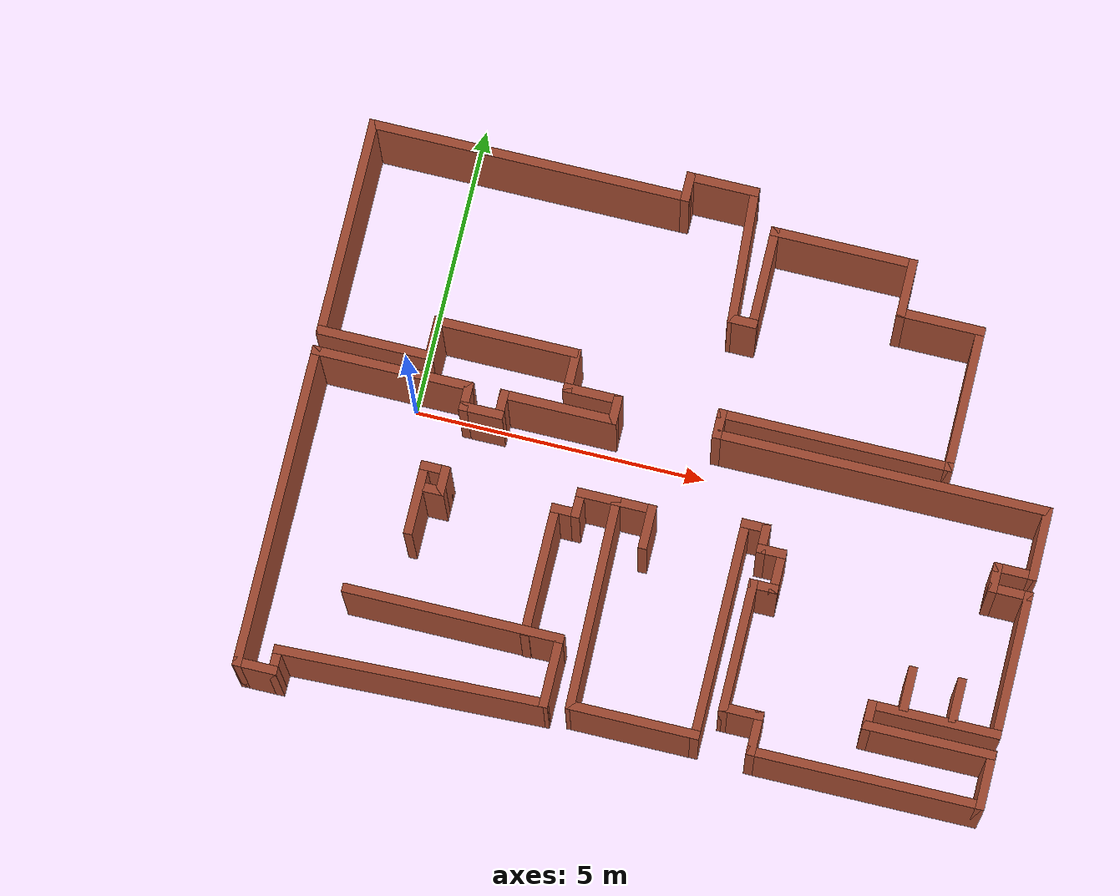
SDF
<?xml version='1.0'?>
<sdf version='1.6'>
  <model name='map_132'>
    <pose frame=''>4.5151 -0.313114 0 0 -0 0</pose>
    <link name='Wall_0'>
      <collision name='Wall_0_Collision'>
        <geometry>
          <box>
            <size>1.25 0.15 2.5</size>
          </box>
        </geometry>
        <pose frame=''>0 0 1.25 0 -0 0</pose>
      </collision>
      <visual name='Wall_0_Visual'>
        <pose frame=''>0 0 1.25 0 -0 0</pose>
        <geometry>
          <box>
            <size>1.25 0.15 2.5</size>
          </box>
        </geometry>
        <material>
          <script>
            <uri>file://media/materials/scripts/gazebo.material</uri>
            <name>Gazebo/Bricks</name>
          </script>
          <ambient>1 1 1 1</ambient>
        </material>
        <meta>
          <layer>0</layer>
        </meta>
      </visual>
      <pose frame=''>-0.29008 4.82284 0 0 -0 3.14159</pose>
    </link>
    <link name='Wall_1'>
      <collision name='Wall_1_Collision'>
        <geometry>
          <box>
            <size>0.5 0.15 2.5</size>
          </box>
        </geometry>
        <pose frame=''>0 0 1.25 0 -0 0</pose>
      </collision>
      <visual name='Wall_1_Visual'>
        <pose frame=''>0 0 1.25 0 -0 0</pose>
        <geometry>
          <box>
            <size>0.5 0.15 2.5</size>
          </box>
        </geometry>
        <material>
          <script>
            <uri>file://media/materials/scripts/gazebo.material</uri>
            <name>Gazebo/Bricks</name>
          </script>
          <ambient>1 1 1 1</ambient>
        </material>
        <meta>
          <layer>0</layer>
        </meta>
      </visual>
      <pose frame=''>-0.84008 4.64783 0 0 -0 -1.5708</pose>
    </link>
    <link name='Wall_10'>
      <collision name='Wall_10_Collision'>
        <geometry>
          <box>
            <size>2 0.15 2.5</size>
          </box>
        </geometry>
        <pose frame=''>0 0 1.25 0 -0 0</pose>
      </collision>
      <visual name='Wall_10_Visual'>
        <pose frame=''>0 0 1.25 0 -0 0</pose>
        <geometry>
          <box>
            <size>2 0.15 2.5</size>
          </box>
        </geometry>
        <material>
          <script>
            <uri>file://media/materials/scripts/gazebo.material</uri>
            <name>Gazebo/Bricks</name>
          </script>
          <ambient>1 1 1 1</ambient>
        </material>
        <meta>
          <layer>0</layer>
        </meta>
      </visual>
      <pose frame=''>-2.06508 0.522835 0 0 -0 3.14159</pose>
    </link>
    <link name='Wall_13'>
      <collision name='Wall_13_Collision'>
        <geometry>
          <box>
            <size>0.5 0.15 2.5</size>
          </box>
        </geometry>
        <pose frame=''>0 0 1.25 0 -0 0</pose>
      </collision>
      <visual name='Wall_13_Visual'>
        <pose frame=''>0 0 1.25 0 -0 0</pose>
        <geometry>
          <box>
            <size>0.5 0.15 2.5</size>
          </box>
        </geometry>
        <material>
          <script>
            <uri>file://media/materials/scripts/gazebo.material</uri>
            <name>Gazebo/Bricks</name>
          </script>
          <ambient>1 1 1 1</ambient>
        </material>
        <meta>
          <layer>0</layer>
        </meta>
      </visual>
      <pose frame=''>-2.99008 0.347835 0 0 -0 -1.5708</pose>
    </link>
    <link name='Wall_14'>
      <collision name='Wall_14_Collision'>
        <geometry>
          <box>
            <size>0.75 0.15 2.5</size>
          </box>
        </geometry>
        <pose frame=''>0 0 1.25 0 -0 0</pose>
      </collision>
      <visual name='Wall_14_Visual'>
        <pose frame=''>0 0 1.25 0 -0 0</pose>
        <geometry>
          <box>
            <size>0.75 0.15 2.5</size>
          </box>
        </geometry>
        <material>
          <script>
            <uri>file://media/materials/scripts/gazebo.material</uri>
            <name>Gazebo/Bricks</name>
          </script>
          <ambient>1 1 1 1</ambient>
        </material>
        <meta>
          <layer>0</layer>
        </meta>
      </visual>
      <pose frame=''>-3.29008 0.172835 0 0 -0 3.14159</pose>
    </link>
    <link name='Wall_15'>
      <collision name='Wall_15_Collision'>
        <geometry>
          <box>
            <size>0.5 0.15 2.5</size>
          </box>
        </geometry>
        <pose frame=''>0 0 1.25 0 -0 0</pose>
      </collision>
      <visual name='Wall_15_Visual'>
        <pose frame=''>0 0 1.25 0 -0 0</pose>
        <geometry>
          <box>
            <size>0.5 0.15 2.5</size>
          </box>
        </geometry>
        <material>
          <script>
            <uri>file://media/materials/scripts/gazebo.material</uri>
            <name>Gazebo/Bricks</name>
          </script>
          <ambient>1 1 1 1</ambient>
        </material>
        <meta>
          <layer>0</layer>
        </meta>
      </visual>
      <pose frame=''>-3.59008 0.347835 0 0 -0 1.5708</pose>
    </link>
    <link name='Wall_16'>
      <collision name='Wall_16_Collision'>
        <geometry>
          <box>
            <size>2.75 0.15 2.5</size>
          </box>
        </geometry>
        <pose frame=''>0 0 1.25 0 -0 0</pose>
      </collision>
      <visual name='Wall_16_Visual'>
        <pose frame=''>0 0 1.25 0 -0 0</pose>
        <geometry>
          <box>
            <size>2.75 0.15 2.5</size>
          </box>
        </geometry>
        <material>
          <script>
            <uri>file://media/materials/scripts/gazebo.material</uri>
            <name>Gazebo/Bricks</name>
          </script>
          <ambient>1 1 1 1</ambient>
        </material>
        <meta>
          <layer>0</layer>
        </meta>
      </visual>
      <pose frame=''>-4.89008 0.522835 0 0 -0 3.14159</pose>
    </link>
    <link name='Wall_2'>
      <collision name='Wall_2_Collision'>
        <geometry>
          <box>
            <size>5.5 0.15 2.5</size>
          </box>
        </geometry>
        <pose frame=''>0 0 1.25 0 -0 0</pose>
      </collision>
      <visual name='Wall_2_Visual'>
        <pose frame=''>0 0 1.25 0 -0 0</pose>
        <geometry>
          <box>
            <size>5.5 0.15 2.5</size>
          </box>
        </geometry>
        <material>
          <script>
            <uri>file://media/materials/scripts/gazebo.material</uri>
            <name>Gazebo/Bricks</name>
          </script>
          <ambient>1 1 1 1</ambient>
        </material>
        <meta>
          <layer>0</layer>
        </meta>
      </visual>
      <pose frame=''>-3.51508 4.47284 0 0 -0 3.14159</pose>
    </link>
    <link name='Wall_23'>
      <collision name='Wall_23_Collision'>
        <geometry>
          <box>
            <size>1.25 0.15 2.5</size>
          </box>
        </geometry>
        <pose frame=''>0 0 1.25 0 -0 0</pose>
      </collision>
      <visual name='Wall_23_Visual'>
        <pose frame=''>0 0 1.25 0 -0 0</pose>
        <geometry>
          <box>
            <size>1.25 0.15 2.5</size>
          </box>
        </geometry>
        <material>
          <script>
            <uri>file://media/materials/scripts/gazebo.material</uri>
            <name>Gazebo/Bricks</name>
          </script>
          <ambient>1 1 1 1</ambient>
        </material>
        <meta>
          <layer>0</layer>
        </meta>
      </visual>
      <pose frame=''>-1.14008 -3.77716 0 0 -0 1.5708</pose>
    </link>
    <link name='Wall_24'>
      <collision name='Wall_24_Collision'>
        <geometry>
          <box>
            <size>3.75 0.15 2.5</size>
          </box>
        </geometry>
        <pose frame=''>0 0 1.25 0 -0 0</pose>
      </collision>
      <visual name='Wall_24_Visual'>
        <pose frame=''>0 0 1.25 0 -0 0</pose>
        <geometry>
          <box>
            <size>3.75 0.15 2.5</size>
          </box>
        </geometry>
        <material>
          <script>
            <uri>file://media/materials/scripts/gazebo.material</uri>
            <name>Gazebo/Bricks</name>
          </script>
          <ambient>1 1 1 1</ambient>
        </material>
        <meta>
          <layer>0</layer>
        </meta>
      </visual>
      <pose frame=''>-2.94008 -3.22716 0 0 -0 3.14159</pose>
    </link>
    <link name='Wall_3'>
      <collision name='Wall_3_Collision'>
        <geometry>
          <box>
            <size>3.75 0.15 2.5</size>
          </box>
        </geometry>
        <pose frame=''>0 0 1.25 0 -0 0</pose>
      </collision>
      <visual name='Wall_3_Visual'>
        <pose frame=''>0 0 1.25 0 -0 0</pose>
        <geometry>
          <box>
            <size>3.75 0.15 2.5</size>
          </box>
        </geometry>
        <material>
          <script>
            <uri>file://media/materials/scripts/gazebo.material</uri>
            <name>Gazebo/Bricks</name>
          </script>
          <ambient>1 1 1 1</ambient>
        </material>
        <meta>
          <layer>0</layer>
        </meta>
      </visual>
      <pose frame=''>-6.19008 2.67284 0 0 -0 -1.5708</pose>
    </link>
    <link name='Wall_31'>
      <collision name='Wall_31_Collision'>
        <geometry>
          <box>
            <size>2.25 0.15 2.5</size>
          </box>
        </geometry>
        <pose frame=''>0 0 1.25 0 -0 0</pose>
      </collision>
      <visual name='Wall_31_Visual'>
        <pose frame=''>0 0 1.25 0 -0 0</pose>
        <geometry>
          <box>
            <size>2.25 0.15 2.5</size>
          </box>
        </geometry>
        <material>
          <script>
            <uri>file://media/materials/scripts/gazebo.material</uri>
            <name>Gazebo/Bricks</name>
          </script>
          <ambient>1 1 1 1</ambient>
        </material>
        <meta>
          <layer>0</layer>
        </meta>
      </visual>
      <pose frame=''>0.34008 -4.26096 0 0 -0 0</pose>
    </link>
    <link name='Wall_32'>
      <collision name='Wall_32_Collision'>
        <geometry>
          <box>
            <size>3.75 0.15 2.5</size>
          </box>
        </geometry>
        <pose frame=''>0 0 1.25 0 -0 0</pose>
      </collision>
      <visual name='Wall_32_Visual'>
        <pose frame=''>0 0 1.25 0 -0 0</pose>
        <geometry>
          <box>
            <size>3.75 0.15 2.5</size>
          </box>
        </geometry>
        <material>
          <script>
            <uri>file://media/materials/scripts/gazebo.material</uri>
            <name>Gazebo/Bricks</name>
          </script>
          <ambient>1 1 1 1</ambient>
        </material>
        <meta>
          <layer>0</layer>
        </meta>
      </visual>
      <pose frame=''>1.39008 -2.46096 0 0 -0 1.5708</pose>
    </link>
    <link name='Wall_33'>
      <collision name='Wall_33_Collision'>
        <geometry>
          <box>
            <size>0.5 0.15 2.5</size>
          </box>
        </geometry>
        <pose frame=''>0 0 1.25 0 -0 0</pose>
      </collision>
      <visual name='Wall_33_Visual'>
        <pose frame=''>0 0 1.25 0 -0 0</pose>
        <geometry>
          <box>
            <size>0.5 0.15 2.5</size>
          </box>
        </geometry>
        <material>
          <script>
            <uri>file://media/materials/scripts/gazebo.material</uri>
            <name>Gazebo/Bricks</name>
          </script>
          <ambient>1 1 1 1</ambient>
        </material>
        <meta>
          <layer>0</layer>
        </meta>
      </visual>
      <pose frame=''>1.56508 -0.660963 0 0 -0 0</pose>
    </link>
    <link name='Wall_34'>
      <collision name='Wall_34_Collision'>
        <geometry>
          <box>
            <size>0.5 0.15 2.5</size>
          </box>
        </geometry>
        <pose frame=''>0 0 1.25 0 -0 0</pose>
      </collision>
      <visual name='Wall_34_Visual'>
        <pose frame=''>0 0 1.25 0 -0 0</pose>
        <geometry>
          <box>
            <size>0.5 0.15 2.5</size>
          </box>
        </geometry>
        <material>
          <script>
            <uri>file://media/materials/scripts/gazebo.material</uri>
            <name>Gazebo/Bricks</name>
          </script>
          <ambient>1 1 1 1</ambient>
        </material>
        <meta>
          <layer>0</layer>
        </meta>
      </visual>
      <pose frame=''>1.74008 -0.835963 0 0 -0 -1.5708</pose>
    </link>
    <link name='Wall_35'>
      <collision name='Wall_35_Collision'>
        <geometry>
          <box>
            <size>0.5 0.15 2.5</size>
          </box>
        </geometry>
        <pose frame=''>0 0 1.25 0 -0 0</pose>
      </collision>
      <visual name='Wall_35_Visual'>
        <pose frame=''>0 0 1.25 0 -0 0</pose>
        <geometry>
          <box>
            <size>0.5 0.15 2.5</size>
          </box>
        </geometry>
        <material>
          <script>
            <uri>file://media/materials/scripts/gazebo.material</uri>
            <name>Gazebo/Bricks</name>
          </script>
          <ambient>1 1 1 1</ambient>
        </material>
        <meta>
          <layer>0</layer>
        </meta>
      </visual>
      <pose frame=''>1.91508 -1.01096 0 0 -0 0</pose>
    </link>
    <link name='Wall_36'>
      <collision name='Wall_36_Collision'>
        <geometry>
          <box>
            <size>0.75 0.15 2.5</size>
          </box>
        </geometry>
        <pose frame=''>0 0 1.25 0 -0 0</pose>
      </collision>
      <visual name='Wall_36_Visual'>
        <pose frame=''>0 0 1.25 0 -0 0</pose>
        <geometry>
          <box>
            <size>0.75 0.15 2.5</size>
          </box>
        </geometry>
        <material>
          <script>
            <uri>file://media/materials/scripts/gazebo.material</uri>
            <name>Gazebo/Bricks</name>
          </script>
          <ambient>1 1 1 1</ambient>
        </material>
        <meta>
          <layer>0</layer>
        </meta>
      </visual>
      <pose frame=''>2.09008 -1.31096 0 0 -0 -1.5708</pose>
    </link>
    <link name='Wall_37'>
      <collision name='Wall_37_Collision'>
        <geometry>
          <box>
            <size>0.5 0.15 2.5</size>
          </box>
        </geometry>
        <pose frame=''>0 0 1.25 0 -0 0</pose>
      </collision>
      <visual name='Wall_37_Visual'>
        <pose frame=''>0 0 1.25 0 -0 0</pose>
        <geometry>
          <box>
            <size>0.5 0.15 2.5</size>
          </box>
        </geometry>
        <material>
          <script>
            <uri>file://media/materials/scripts/gazebo.material</uri>
            <name>Gazebo/Bricks</name>
          </script>
          <ambient>1 1 1 1</ambient>
        </material>
        <meta>
          <layer>0</layer>
        </meta>
      </visual>
      <pose frame=''>1.91508 -1.61096 0 0 -0 3.14159</pose>
    </link>
    <link name='Wall_38'>
      <collision name='Wall_38_Collision'>
        <geometry>
          <box>
            <size>2.25 0.15 2.5</size>
          </box>
        </geometry>
        <pose frame=''>0 0 1.25 0 -0 0</pose>
      </collision>
      <visual name='Wall_38_Visual'>
        <pose frame=''>0 0 1.25 0 -0 0</pose>
        <geometry>
          <box>
            <size>2.25 0.15 2.5</size>
          </box>
        </geometry>
        <material>
          <script>
            <uri>file://media/materials/scripts/gazebo.material</uri>
            <name>Gazebo/Bricks</name>
          </script>
          <ambient>1 1 1 1</ambient>
        </material>
        <meta>
          <layer>0</layer>
        </meta>
      </visual>
      <pose frame=''>1.74008 -2.66096 0 0 -0 -1.5708</pose>
    </link>
    <link name='Wall_39'>
      <collision name='Wall_39_Collision'>
        <geometry>
          <box>
            <size>0.75 0.15 2.5</size>
          </box>
        </geometry>
        <pose frame=''>0 0 1.25 0 -0 0</pose>
      </collision>
      <visual name='Wall_39_Visual'>
        <pose frame=''>0 0 1.25 0 -0 0</pose>
        <geometry>
          <box>
            <size>0.75 0.15 2.5</size>
          </box>
        </geometry>
        <material>
          <script>
            <uri>file://media/materials/scripts/gazebo.material</uri>
            <name>Gazebo/Bricks</name>
          </script>
          <ambient>1 1 1 1</ambient>
        </material>
        <meta>
          <layer>0</layer>
        </meta>
      </visual>
      <pose frame=''>2.04008 -3.71096 0 0 -0 0</pose>
    </link>
    <link name='Wall_4'>
      <collision name='Wall_4_Collision'>
        <geometry>
          <box>
            <size>2 0.15 2.5</size>
          </box>
        </geometry>
        <pose frame=''>0 0 1.25 0 -0 0</pose>
      </collision>
      <visual name='Wall_4_Visual'>
        <pose frame=''>0 0 1.25 0 -0 0</pose>
        <geometry>
          <box>
            <size>2 0.15 2.5</size>
          </box>
        </geometry>
        <material>
          <script>
            <uri>file://media/materials/scripts/gazebo.material</uri>
            <name>Gazebo/Bricks</name>
          </script>
          <ambient>1 1 1 1</ambient>
        </material>
        <meta>
          <layer>0</layer>
        </meta>
      </visual>
      <pose frame=''>-5.26508 0.872835 0 0 -0 0</pose>
    </link>
    <link name='Wall_40'>
      <collision name='Wall_40_Collision'>
        <geometry>
          <box>
            <size>0.75 0.15 2.5</size>
          </box>
        </geometry>
        <pose frame=''>0 0 1.25 0 -0 0</pose>
      </collision>
      <visual name='Wall_40_Visual'>
        <pose frame=''>0 0 1.25 0 -0 0</pose>
        <geometry>
          <box>
            <size>0.75 0.15 2.5</size>
          </box>
        </geometry>
        <material>
          <script>
            <uri>file://media/materials/scripts/gazebo.material</uri>
            <name>Gazebo/Bricks</name>
          </script>
          <ambient>1 1 1 1</ambient>
        </material>
        <meta>
          <layer>0</layer>
        </meta>
      </visual>
      <pose frame=''>2.34008 -4.01096 0 0 -0 -1.5708</pose>
    </link>
    <link name='Wall_41'>
      <collision name='Wall_41_Collision'>
        <geometry>
          <box>
            <size>4 0.15 2.5</size>
          </box>
        </geometry>
        <pose frame=''>0 0 1.25 0 -0 0</pose>
      </collision>
      <visual name='Wall_41_Visual'>
        <pose frame=''>0 0 1.25 0 -0 0</pose>
        <geometry>
          <box>
            <size>4 0.15 2.5</size>
          </box>
        </geometry>
        <material>
          <script>
            <uri>file://media/materials/scripts/gazebo.material</uri>
            <name>Gazebo/Bricks</name>
          </script>
          <ambient>1 1 1 1</ambient>
        </material>
        <meta>
          <layer>0</layer>
        </meta>
      </visual>
      <pose frame=''>4.26508 -4.31096 0 0 -0 0</pose>
    </link>
    <link name='Wall_42'>
      <collision name='Wall_42_Collision'>
        <geometry>
          <box>
            <size>1 0.15 2.5</size>
          </box>
        </geometry>
        <pose frame=''>0 0 1.25 0 -0 0</pose>
      </collision>
      <visual name='Wall_42_Visual'>
        <pose frame=''>0 0 1.25 0 -0 0</pose>
        <geometry>
          <box>
            <size>1 0.15 2.5</size>
          </box>
        </geometry>
        <material>
          <script>
            <uri>file://media/materials/scripts/gazebo.material</uri>
            <name>Gazebo/Bricks</name>
          </script>
          <ambient>1 1 1 1</ambient>
        </material>
        <meta>
          <layer>0</layer>
        </meta>
      </visual>
      <pose frame=''>6.19008 -3.88596 0 0 -0 1.5708</pose>
    </link>
    <link name='Wall_43'>
      <collision name='Wall_43_Collision'>
        <geometry>
          <box>
            <size>2.25 0.15 2.5</size>
          </box>
        </geometry>
        <pose frame=''>0 0 1.25 0 -0 0</pose>
      </collision>
      <visual name='Wall_43_Visual'>
        <pose frame=''>0 0 1.25 0 -0 0</pose>
        <geometry>
          <box>
            <size>2.25 0.15 2.5</size>
          </box>
        </geometry>
        <material>
          <script>
            <uri>file://media/materials/scripts/gazebo.material</uri>
            <name>Gazebo/Bricks</name>
          </script>
          <ambient>1 1 1 1</ambient>
        </material>
        <meta>
          <layer>0</layer>
        </meta>
      </visual>
      <pose frame=''>5.14008 -3.46096 0 0 -0 3.14159</pose>
    </link>
    <link name='Wall_44'>
      <collision name='Wall_44_Collision'>
        <geometry>
          <box>
            <size>0.5 0.15 2.5</size>
          </box>
        </geometry>
        <pose frame=''>0 0 1.25 0 -0 0</pose>
      </collision>
      <visual name='Wall_44_Visual'>
        <pose frame=''>0 0 1.25 0 -0 0</pose>
        <geometry>
          <box>
            <size>0.5 0.15 2.5</size>
          </box>
        </geometry>
        <material>
          <script>
            <uri>file://media/materials/scripts/gazebo.material</uri>
            <name>Gazebo/Bricks</name>
          </script>
          <ambient>1 1 1 1</ambient>
        </material>
        <meta>
          <layer>0</layer>
        </meta>
      </visual>
      <pose frame=''>4.09008 -3.28596 0 0 -0 1.5708</pose>
    </link>
    <link name='Wall_45'>
      <collision name='Wall_45_Collision'>
        <geometry>
          <box>
            <size>2.25 0.15 2.5</size>
          </box>
        </geometry>
        <pose frame=''>0 0 1.25 0 -0 0</pose>
      </collision>
      <visual name='Wall_45_Visual'>
        <pose frame=''>0 0 1.25 0 -0 0</pose>
        <geometry>
          <box>
            <size>2.25 0.15 2.5</size>
          </box>
        </geometry>
        <material>
          <script>
            <uri>file://media/materials/scripts/gazebo.material</uri>
            <name>Gazebo/Bricks</name>
          </script>
          <ambient>1 1 1 1</ambient>
        </material>
        <meta>
          <layer>0</layer>
        </meta>
      </visual>
      <pose frame=''>5.14008 -3.11096 0 0 -0 0</pose>
    </link>
    <link name='Wall_46'>
      <collision name='Wall_46_Collision'>
        <geometry>
          <box>
            <size>2.5 0.15 2.5</size>
          </box>
        </geometry>
        <pose frame=''>0 0 1.25 0 -0 0</pose>
      </collision>
      <visual name='Wall_46_Visual'>
        <pose frame=''>0 0 1.25 0 -0 0</pose>
        <geometry>
          <box>
            <size>2.5 0.15 2.5</size>
          </box>
        </geometry>
        <material>
          <script>
            <uri>file://media/materials/scripts/gazebo.material</uri>
            <name>Gazebo/Bricks</name>
          </script>
          <ambient>1 1 1 1</ambient>
        </material>
        <meta>
          <layer>0</layer>
        </meta>
      </visual>
      <pose frame=''>6.19008 -1.93596 0 0 -0 1.5708</pose>
    </link>
    <link name='Wall_47'>
      <collision name='Wall_47_Collision'>
        <geometry>
          <box>
            <size>0.75 0.15 2.5</size>
          </box>
        </geometry>
        <pose frame=''>0 0 1.25 0 -0 0</pose>
      </collision>
      <visual name='Wall_47_Visual'>
        <pose frame=''>0 0 1.25 0 -0 0</pose>
        <geometry>
          <box>
            <size>0.75 0.15 2.5</size>
          </box>
        </geometry>
        <material>
          <script>
            <uri>file://media/materials/scripts/gazebo.material</uri>
            <name>Gazebo/Bricks</name>
          </script>
          <ambient>1 1 1 1</ambient>
        </material>
        <meta>
          <layer>0</layer>
        </meta>
      </visual>
      <pose frame=''>5.89008 -0.760963 0 0 -0 3.14159</pose>
    </link>
    <link name='Wall_48'>
      <collision name='Wall_48_Collision'>
        <geometry>
          <box>
            <size>0.5 0.15 2.5</size>
          </box>
        </geometry>
        <pose frame=''>0 0 1.25 0 -0 0</pose>
      </collision>
      <visual name='Wall_48_Visual'>
        <pose frame=''>0 0 1.25 0 -0 0</pose>
        <geometry>
          <box>
            <size>0.5 0.15 2.5</size>
          </box>
        </geometry>
        <material>
          <script>
            <uri>file://media/materials/scripts/gazebo.material</uri>
            <name>Gazebo/Bricks</name>
          </script>
          <ambient>1 1 1 1</ambient>
        </material>
        <meta>
          <layer>0</layer>
        </meta>
      </visual>
      <pose frame=''>5.59008 -0.585963 0 0 -0 1.5708</pose>
    </link>
    <link name='Wall_49'>
      <collision name='Wall_49_Collision'>
        <geometry>
          <box>
            <size>0.75 0.15 2.5</size>
          </box>
        </geometry>
        <pose frame=''>0 0 1.25 0 -0 0</pose>
      </collision>
      <visual name='Wall_49_Visual'>
        <pose frame=''>0 0 1.25 0 -0 0</pose>
        <geometry>
          <box>
            <size>0.75 0.15 2.5</size>
          </box>
        </geometry>
        <material>
          <script>
            <uri>file://media/materials/scripts/gazebo.material</uri>
            <name>Gazebo/Bricks</name>
          </script>
          <ambient>1 1 1 1</ambient>
        </material>
        <meta>
          <layer>0</layer>
        </meta>
      </visual>
      <pose frame=''>5.89008 -0.410963 0 0 -0 0</pose>
    </link>
    <link name='Wall_5'>
      <collision name='Wall_5_Collision'>
        <geometry>
          <box>
            <size>0.75 0.15 2.5</size>
          </box>
        </geometry>
        <pose frame=''>0 0 1.25 0 -0 0</pose>
      </collision>
      <visual name='Wall_5_Visual'>
        <pose frame=''>0 0 1.25 0 -0 0</pose>
        <geometry>
          <box>
            <size>0.75 0.15 2.5</size>
          </box>
        </geometry>
        <material>
          <script>
            <uri>file://media/materials/scripts/gazebo.material</uri>
            <name>Gazebo/Bricks</name>
          </script>
          <ambient>1 1 1 1</ambient>
        </material>
        <meta>
          <layer>0</layer>
        </meta>
      </visual>
      <pose frame=''>-4.34008 1.17284 0 0 -0 1.5708</pose>
    </link>
    <link name='Wall_50'>
      <collision name='Wall_50_Collision'>
        <geometry>
          <box>
            <size>1.25 0.15 2.5</size>
          </box>
        </geometry>
        <pose frame=''>0 0 1.25 0 -0 0</pose>
      </collision>
      <visual name='Wall_50_Visual'>
        <pose frame=''>0 0 1.25 0 -0 0</pose>
        <geometry>
          <box>
            <size>1.25 0.15 2.5</size>
          </box>
        </geometry>
        <material>
          <script>
            <uri>file://media/materials/scripts/gazebo.material</uri>
            <name>Gazebo/Bricks</name>
          </script>
          <ambient>1 1 1 1</ambient>
        </material>
        <meta>
          <layer>0</layer>
        </meta>
      </visual>
      <pose frame=''>6.19008 0.139037 0 0 -0 1.5708</pose>
    </link>
    <link name='Wall_51'>
      <collision name='Wall_51_Collision'>
        <geometry>
          <box>
            <size>5.75 0.15 2.5</size>
          </box>
        </geometry>
        <pose frame=''>0 0 1.25 0 -0 0</pose>
      </collision>
      <visual name='Wall_51_Visual'>
        <pose frame=''>0 0 1.25 0 -0 0</pose>
        <geometry>
          <box>
            <size>5.75 0.15 2.5</size>
          </box>
        </geometry>
        <material>
          <script>
            <uri>file://media/materials/scripts/gazebo.material</uri>
            <name>Gazebo/Bricks</name>
          </script>
          <ambient>1 1 1 1</ambient>
        </material>
        <meta>
          <layer>0</layer>
        </meta>
      </visual>
      <pose frame=''>3.39008 0.689037 0 0 -0 3.14159</pose>
    </link>
    <link name='Wall_52'>
      <collision name='Wall_52_Collision'>
        <geometry>
          <box>
            <size>0.5 0.15 2.5</size>
          </box>
        </geometry>
        <pose frame=''>0 0 1.25 0 -0 0</pose>
      </collision>
      <visual name='Wall_52_Visual'>
        <pose frame=''>0 0 1.25 0 -0 0</pose>
        <geometry>
          <box>
            <size>0.5 0.15 2.5</size>
          </box>
        </geometry>
        <material>
          <script>
            <uri>file://media/materials/scripts/gazebo.material</uri>
            <name>Gazebo/Bricks</name>
          </script>
          <ambient>1 1 1 1</ambient>
        </material>
        <meta>
          <layer>0</layer>
        </meta>
      </visual>
      <pose frame=''>0.59008 0.864037 0 0 -0 1.5708</pose>
    </link>
    <link name='Wall_53'>
      <collision name='Wall_53_Collision'>
        <geometry>
          <box>
            <size>4 0.15 2.5</size>
          </box>
        </geometry>
        <pose frame=''>0 0 1.25 0 -0 0</pose>
      </collision>
      <visual name='Wall_53_Visual'>
        <pose frame=''>0 0 1.25 0 -0 0</pose>
        <geometry>
          <box>
            <size>4 0.15 2.5</size>
          </box>
        </geometry>
        <material>
          <script>
            <uri>file://media/materials/scripts/gazebo.material</uri>
            <name>Gazebo/Bricks</name>
          </script>
          <ambient>1 1 1 1</ambient>
        </material>
        <meta>
          <layer>0</layer>
        </meta>
      </visual>
      <pose frame=''>2.51508 1.03904 0 0 -0 0</pose>
    </link>
    <link name='Wall_54'>
      <collision name='Wall_54_Collision'>
        <geometry>
          <box>
            <size>2.5 0.15 2.5</size>
          </box>
        </geometry>
        <pose frame=''>0 0 1.25 0 -0 0</pose>
      </collision>
      <visual name='Wall_54_Visual'>
        <pose frame=''>0 0 1.25 0 -0 0</pose>
        <geometry>
          <box>
            <size>2.5 0.15 2.5</size>
          </box>
        </geometry>
        <material>
          <script>
            <uri>file://media/materials/scripts/gazebo.material</uri>
            <name>Gazebo/Bricks</name>
          </script>
          <ambient>1 1 1 1</ambient>
        </material>
        <meta>
          <layer>0</layer>
        </meta>
      </visual>
      <pose frame=''>4.44008 2.21404 0 0 -0 1.5708</pose>
    </link>
    <link name='Wall_55'>
      <collision name='Wall_55_Collision'>
        <geometry>
          <box>
            <size>1.5 0.15 2.5</size>
          </box>
        </geometry>
        <pose frame=''>0 0 1.25 0 -0 0</pose>
      </collision>
      <visual name='Wall_55_Visual'>
        <pose frame=''>0 0 1.25 0 -0 0</pose>
        <geometry>
          <box>
            <size>1.5 0.15 2.5</size>
          </box>
        </geometry>
        <material>
          <script>
            <uri>file://media/materials/scripts/gazebo.material</uri>
            <name>Gazebo/Bricks</name>
          </script>
          <ambient>1 1 1 1</ambient>
        </material>
        <meta>
          <layer>0</layer>
        </meta>
      </visual>
      <pose frame=''>3.76508 3.38904 0 0 -0 3.14159</pose>
    </link>
    <link name='Wall_56'>
      <collision name='Wall_56_Collision'>
        <geometry>
          <box>
            <size>1 0.15 2.5</size>
          </box>
        </geometry>
        <pose frame=''>0 0 1.25 0 -0 0</pose>
      </collision>
      <visual name='Wall_56_Visual'>
        <pose frame=''>0 0 1.25 0 -0 0</pose>
        <geometry>
          <box>
            <size>1 0.15 2.5</size>
          </box>
        </geometry>
        <material>
          <script>
            <uri>file://media/materials/scripts/gazebo.material</uri>
            <name>Gazebo/Bricks</name>
          </script>
          <ambient>1 1 1 1</ambient>
        </material>
        <meta>
          <layer>0</layer>
        </meta>
      </visual>
      <pose frame=''>3.09008 3.81404 0 0 -0 1.5708</pose>
    </link>
    <link name='Wall_57'>
      <collision name='Wall_57_Collision'>
        <geometry>
          <box>
            <size>2.5 0.15 2.5</size>
          </box>
        </geometry>
        <pose frame=''>0 0 1.25 0 -0 0</pose>
      </collision>
      <visual name='Wall_57_Visual'>
        <pose frame=''>0 0 1.25 0 -0 0</pose>
        <geometry>
          <box>
            <size>2.5 0.15 2.5</size>
          </box>
        </geometry>
        <material>
          <script>
            <uri>file://media/materials/scripts/gazebo.material</uri>
            <name>Gazebo/Bricks</name>
          </script>
          <ambient>1 1 1 1</ambient>
        </material>
        <meta>
          <layer>0</layer>
        </meta>
      </visual>
      <pose frame=''>1.91508 4.23904 0 0 -0 3.14159</pose>
    </link>
    <link name='Wall_6'>
      <collision name='Wall_6_Collision'>
        <geometry>
          <box>
            <size>2.5 0.15 2.5</size>
          </box>
        </geometry>
        <pose frame=''>0 0 1.25 0 -0 0</pose>
      </collision>
      <visual name='Wall_6_Visual'>
        <pose frame=''>0 0 1.25 0 -0 0</pose>
        <geometry>
          <box>
            <size>2.5 0.15 2.5</size>
          </box>
        </geometry>
        <material>
          <script>
            <uri>file://media/materials/scripts/gazebo.material</uri>
            <name>Gazebo/Bricks</name>
          </script>
          <ambient>1 1 1 1</ambient>
        </material>
        <meta>
          <layer>0</layer>
        </meta>
      </visual>
      <pose frame=''>-3.16508 1.47283 0 0 -0 0</pose>
    </link>
    <link name='Wall_68'>
      <collision name='Wall_68_Collision'>
        <geometry>
          <box>
            <size>2.25 0.15 2.5</size>
          </box>
        </geometry>
        <pose frame=''>0 0 1.25 0 -0 0</pose>
      </collision>
      <visual name='Wall_68_Visual'>
        <pose frame=''>0 0 1.25 0 -0 0</pose>
        <geometry>
          <box>
            <size>2.25 0.15 2.5</size>
          </box>
        </geometry>
        <material>
          <script>
            <uri>file://media/materials/scripts/gazebo.material</uri>
            <name>Gazebo/Bricks</name>
          </script>
          <ambient>1 1 1 1</ambient>
        </material>
        <meta>
          <layer>0</layer>
        </meta>
      </visual>
      <pose frame=''>-1.71697 -2.1885 0 0 -0 1.5708</pose>
    </link>
    <link name='Wall_69'>
      <collision name='Wall_69_Collision'>
        <geometry>
          <box>
            <size>0.5 0.15 2.5</size>
          </box>
        </geometry>
        <pose frame=''>0 0 1.25 0 -0 0</pose>
      </collision>
      <visual name='Wall_69_Visual'>
        <pose frame=''>0 0 1.25 0 -0 0</pose>
        <geometry>
          <box>
            <size>0.5 0.15 2.5</size>
          </box>
        </geometry>
        <material>
          <script>
            <uri>file://media/materials/scripts/gazebo.material</uri>
            <name>Gazebo/Bricks</name>
          </script>
          <ambient>1 1 1 1</ambient>
        </material>
        <meta>
          <layer>0</layer>
        </meta>
      </visual>
      <pose frame=''>-1.54197 -1.1385 0 0 -0 0</pose>
    </link>
    <link name='Wall_7'>
      <collision name='Wall_7_Collision'>
        <geometry>
          <box>
            <size>0.75 0.15 2.5</size>
          </box>
        </geometry>
        <pose frame=''>0 0 1.25 0 -0 0</pose>
      </collision>
      <visual name='Wall_7_Visual'>
        <pose frame=''>0 0 1.25 0 -0 0</pose>
        <geometry>
          <box>
            <size>0.75 0.15 2.5</size>
          </box>
        </geometry>
        <material>
          <script>
            <uri>file://media/materials/scripts/gazebo.material</uri>
            <name>Gazebo/Bricks</name>
          </script>
          <ambient>1 1 1 1</ambient>
        </material>
        <meta>
          <layer>0</layer>
        </meta>
      </visual>
      <pose frame=''>-1.99008 1.17284 0 0 -0 -1.5708</pose>
    </link>
    <link name='Wall_72'>
      <collision name='Wall_72_Collision'>
        <geometry>
          <box>
            <size>0.5 0.15 2.5</size>
          </box>
        </geometry>
        <pose frame=''>0 0 1.25 0 -0 0</pose>
      </collision>
      <visual name='Wall_72_Visual'>
        <pose frame=''>0 0 1.25 0 -0 0</pose>
        <geometry>
          <box>
            <size>0.5 0.15 2.5</size>
          </box>
        </geometry>
        <material>
          <script>
            <uri>file://media/materials/scripts/gazebo.material</uri>
            <name>Gazebo/Bricks</name>
          </script>
          <ambient>1 1 1 1</ambient>
        </material>
        <meta>
          <layer>0</layer>
        </meta>
      </visual>
      <pose frame=''>-1.36697 -0.963502 0 0 -0 1.5708</pose>
    </link>
    <link name='Wall_73'>
      <collision name='Wall_73_Collision'>
        <geometry>
          <box>
            <size>0.75 0.15 2.5</size>
          </box>
        </geometry>
        <pose frame=''>0 0 1.25 0 -0 0</pose>
      </collision>
      <visual name='Wall_73_Visual'>
        <pose frame=''>0 0 1.25 0 -0 0</pose>
        <geometry>
          <box>
            <size>0.75 0.15 2.5</size>
          </box>
        </geometry>
        <material>
          <script>
            <uri>file://media/materials/scripts/gazebo.material</uri>
            <name>Gazebo/Bricks</name>
          </script>
          <ambient>1 1 1 1</ambient>
        </material>
        <meta>
          <layer>0</layer>
        </meta>
      </visual>
      <pose frame=''>-1.06697 -0.788502 0 0 -0 0</pose>
    </link>
    <link name='Wall_74'>
      <collision name='Wall_74_Collision'>
        <geometry>
          <box>
            <size>3.62293 0.15 2.5</size>
          </box>
        </geometry>
        <pose frame=''>0 0 1.25 0 -0 0</pose>
      </collision>
      <visual name='Wall_74_Visual'>
        <pose frame=''>0 0 1.25 0 -0 0</pose>
        <geometry>
          <box>
            <size>3.62293 0.15 2.5</size>
          </box>
        </geometry>
        <material>
          <script>
            <uri>file://media/materials/scripts/gazebo.material</uri>
            <name>Gazebo/Bricks</name>
          </script>
          <ambient>1 1 1 1</ambient>
        </material>
        <meta>
          <layer>0</layer>
        </meta>
      </visual>
      <pose frame=''>-0.738446 -2.52473 0 0 -0 -1.55437</pose>
    </link>
    <link name='Wall_76'>
      <collision name='Wall_76_Collision'>
        <geometry>
          <box>
            <size>1.75 0.15 2.5</size>
          </box>
        </geometry>
        <pose frame=''>0 0 1.25 0 -0 0</pose>
      </collision>
      <visual name='Wall_76_Visual'>
        <pose frame=''>0 0 1.25 0 -0 0</pose>
        <geometry>
          <box>
            <size>1.75 0.15 2.5</size>
          </box>
        </geometry>
        <material>
          <script>
            <uri>file://media/materials/scripts/gazebo.material</uri>
            <name>Gazebo/Bricks</name>
          </script>
          <ambient>1 1 1 1</ambient>
        </material>
        <meta>
          <layer>0</layer>
        </meta>
      </visual>
      <pose frame=''>0.74008 3.43904 0 0 -0 -1.5708</pose>
    </link>
    <link name='Wall_77'>
      <collision name='Wall_77_Collision'>
        <geometry>
          <box>
            <size>0.5 0.15 2.5</size>
          </box>
        </geometry>
        <pose frame=''>0 0 1.25 0 -0 0</pose>
      </collision>
      <visual name='Wall_77_Visual'>
        <pose frame=''>0 0 1.25 0 -0 0</pose>
        <geometry>
          <box>
            <size>0.5 0.15 2.5</size>
          </box>
        </geometry>
        <material>
          <script>
            <uri>file://media/materials/scripts/gazebo.material</uri>
            <name>Gazebo/Bricks</name>
          </script>
          <ambient>1 1 1 1</ambient>
        </material>
        <meta>
          <layer>0</layer>
        </meta>
      </visual>
      <pose frame=''>0.56508 2.63904 0 0 -0 3.14159</pose>
    </link>
    <link name='Wall_78'>
      <collision name='Wall_78_Collision'>
        <geometry>
          <box>
            <size>2.33767 0.15 2.5</size>
          </box>
        </geometry>
        <pose frame=''>0 0 1.25 0 -0 0</pose>
      </collision>
      <visual name='Wall_78_Visual'>
        <pose frame=''>0 0 1.25 0 -0 0</pose>
        <geometry>
          <box>
            <size>2.33767 0.15 2.5</size>
          </box>
        </geometry>
        <material>
          <script>
            <uri>file://media/materials/scripts/gazebo.material</uri>
            <name>Gazebo/Bricks</name>
          </script>
          <ambient>1 1 1 1</ambient>
        </material>
        <meta>
          <layer>0</layer>
        </meta>
      </visual>
      <pose frame=''>0.325 3.73094 0 0 -0 1.63033</pose>
    </link>
    <link name='Wall_8'>
      <collision name='Wall_8_Collision'>
        <geometry>
          <box>
            <size>1 0.15 2.5</size>
          </box>
        </geometry>
        <pose frame=''>0 0 1.25 0 -0 0</pose>
      </collision>
      <visual name='Wall_8_Visual'>
        <pose frame=''>0 0 1.25 0 -0 0</pose>
        <geometry>
          <box>
            <size>1 0.15 2.5</size>
          </box>
        </geometry>
        <material>
          <script>
            <uri>file://media/materials/scripts/gazebo.material</uri>
            <name>Gazebo/Bricks</name>
          </script>
          <ambient>1 1 1 1</ambient>
        </material>
        <meta>
          <layer>0</layer>
        </meta>
      </visual>
      <pose frame=''>-1.56508 0.872835 0 0 -0 0</pose>
    </link>
    <link name='Wall_80'>
      <collision name='Wall_80_Collision'>
        <geometry>
          <box>
            <size>5.5 0.15 2.5</size>
          </box>
        </geometry>
        <pose frame=''>0 0 1.25 0 -0 0</pose>
      </collision>
      <visual name='Wall_80_Visual'>
        <pose frame=''>0 0 1.25 0 -0 0</pose>
        <geometry>
          <box>
            <size>5.5 0.15 2.5</size>
          </box>
        </geometry>
        <material>
          <script>
            <uri>file://media/materials/scripts/gazebo.material</uri>
            <name>Gazebo/Bricks</name>
          </script>
          <ambient>1 1 1 1</ambient>
        </material>
        <meta>
          <layer>0</layer>
        </meta>
      </visual>
      <pose frame=''>-6.19008 -2.15216 0 0 -0 -1.5708</pose>
    </link>
    <link name='Wall_81'>
      <collision name='Wall_81_Collision'>
        <geometry>
          <box>
            <size>0.75 0.15 2.5</size>
          </box>
        </geometry>
        <pose frame=''>0 0 1.25 0 -0 0</pose>
      </collision>
      <visual name='Wall_81_Visual'>
        <pose frame=''>0 0 1.25 0 -0 0</pose>
        <geometry>
          <box>
            <size>0.75 0.15 2.5</size>
          </box>
        </geometry>
        <material>
          <script>
            <uri>file://media/materials/scripts/gazebo.material</uri>
            <name>Gazebo/Bricks</name>
          </script>
          <ambient>1 1 1 1</ambient>
        </material>
        <meta>
          <layer>0</layer>
        </meta>
      </visual>
      <pose frame=''>-5.89008 -4.82716 0 0 -0 0</pose>
    </link>
    <link name='Wall_82'>
      <collision name='Wall_82_Collision'>
        <geometry>
          <box>
            <size>0.5 0.15 2.5</size>
          </box>
        </geometry>
        <pose frame=''>0 0 1.25 0 -0 0</pose>
      </collision>
      <visual name='Wall_82_Visual'>
        <pose frame=''>0 0 1.25 0 -0 0</pose>
        <geometry>
          <box>
            <size>0.5 0.15 2.5</size>
          </box>
        </geometry>
        <material>
          <script>
            <uri>file://media/materials/scripts/gazebo.material</uri>
            <name>Gazebo/Bricks</name>
          </script>
          <ambient>1 1 1 1</ambient>
        </material>
        <meta>
          <layer>0</layer>
        </meta>
      </visual>
      <pose frame=''>-5.59008 -4.65216 0 0 -0 1.5708</pose>
    </link>
    <link name='Wall_83'>
      <collision name='Wall_83_Collision'>
        <geometry>
          <box>
            <size>4.60253 0.15 2.5</size>
          </box>
        </geometry>
        <pose frame=''>0 0 1.25 0 -0 0</pose>
      </collision>
      <visual name='Wall_83_Visual'>
        <pose frame=''>0 0 1.25 0 -0 0</pose>
        <geometry>
          <box>
            <size>4.60253 0.15 2.5</size>
          </box>
        </geometry>
        <material>
          <script>
            <uri>file://media/materials/scripts/gazebo.material</uri>
            <name>Gazebo/Bricks</name>
          </script>
          <ambient>1 1 1 1</ambient>
        </material>
        <meta>
          <layer>0</layer>
        </meta>
      </visual>
      <pose frame=''>-3.36508 -4.40216 0 0 -0 0.033695</pose>
    </link>
    <link name='Wall_85'>
      <collision name='Wall_85_Collision'>
        <geometry>
          <box>
            <size>0.75 0.15 2.5</size>
          </box>
        </geometry>
        <pose frame=''>0 0 1.25 0 -0 0</pose>
      </collision>
      <visual name='Wall_85_Visual'>
        <pose frame=''>0 0 1.25 0 -0 0</pose>
        <geometry>
          <box>
            <size>0.75 0.15 2.5</size>
          </box>
        </geometry>
        <material>
          <script>
            <uri>file://media/materials/scripts/gazebo.material</uri>
            <name>Gazebo/Bricks</name>
          </script>
          <ambient>1 1 1 1</ambient>
        </material>
        <meta>
          <layer>0</layer>
        </meta>
      </visual>
      <pose frame=''>4.6152 -2.71257 0 0 -0 -1.5708</pose>
    </link>
    <link name='Wall_87'>
      <collision name='Wall_87_Collision'>
        <geometry>
          <box>
            <size>0.75 0.15 2.5</size>
          </box>
        </geometry>
        <pose frame=''>0 0 1.25 0 -0 0</pose>
      </collision>
      <visual name='Wall_87_Visual'>
        <pose frame=''>0 0 1.25 0 -0 0</pose>
        <geometry>
          <box>
            <size>0.75 0.15 2.5</size>
          </box>
        </geometry>
        <material>
          <script>
            <uri>file://media/materials/scripts/gazebo.material</uri>
            <name>Gazebo/Bricks</name>
          </script>
          <ambient>1 1 1 1</ambient>
        </material>
        <meta>
          <layer>0</layer>
        </meta>
      </visual>
      <pose frame=''>5.44114 -2.71257 0 0 -0 -1.5708</pose>
    </link>
    <link name='Wall_89'>
      <collision name='Wall_89_Collision'>
        <geometry>
          <box>
            <size>1.25 0.15 2.5</size>
          </box>
        </geometry>
        <pose frame=''>0 0 1.25 0 -0 0</pose>
      </collision>
      <visual name='Wall_89_Visual'>
        <pose frame=''>0 0 1.25 0 -0 0</pose>
        <geometry>
          <box>
            <size>1.25 0.15 2.5</size>
          </box>
        </geometry>
        <material>
          <script>
            <uri>file://media/materials/scripts/gazebo.material</uri>
            <name>Gazebo/Bricks</name>
          </script>
          <ambient>1 1 1 1</ambient>
        </material>
        <meta>
          <layer>0</layer>
        </meta>
      </visual>
      <pose frame=''>-3.98065 -1.49423 0 0 -0 -1.5708</pose>
    </link>
    <link name='Wall_9'>
      <collision name='Wall_9_Collision'>
        <geometry>
          <box>
            <size>0.5 0.15 2.5</size>
          </box>
        </geometry>
        <pose frame=''>0 0 1.25 0 -0 0</pose>
      </collision>
      <visual name='Wall_9_Visual'>
        <pose frame=''>0 0 1.25 0 -0 0</pose>
        <geometry>
          <box>
            <size>0.5 0.15 2.5</size>
          </box>
        </geometry>
        <material>
          <script>
            <uri>file://media/materials/scripts/gazebo.material</uri>
            <name>Gazebo/Bricks</name>
          </script>
          <ambient>1 1 1 1</ambient>
        </material>
        <meta>
          <layer>0</layer>
        </meta>
      </visual>
      <pose frame=''>-1.14008 0.697835 0 0 -0 -1.5708</pose>
    </link>
    <link name='Wall_91'>
      <collision name='Wall_91_Collision'>
        <geometry>
          <box>
            <size>0.5 0.15 2.5</size>
          </box>
        </geometry>
        <pose frame=''>0 0 1.25 0 -0 0</pose>
      </collision>
      <visual name='Wall_91_Visual'>
        <pose frame=''>0 0 1.25 0 -0 0</pose>
        <geometry>
          <box>
            <size>0.5 0.15 2.5</size>
          </box>
        </geometry>
        <material>
          <script>
            <uri>file://media/materials/scripts/gazebo.material</uri>
            <name>Gazebo/Bricks</name>
          </script>
          <ambient>1 1 1 1</ambient>
        </material>
        <meta>
          <layer>0</layer>
        </meta>
      </visual>
      <pose frame=''>-3.80565 -0.944235 0 0 -0 0</pose>
    </link>
    <link name='Wall_92'>
      <collision name='Wall_92_Collision'>
        <geometry>
          <box>
            <size>0.5 0.15 2.5</size>
          </box>
        </geometry>
        <pose frame=''>0 0 1.25 0 -0 0</pose>
      </collision>
      <visual name='Wall_92_Visual'>
        <pose frame=''>0 0 1.25 0 -0 0</pose>
        <geometry>
          <box>
            <size>0.5 0.15 2.5</size>
          </box>
        </geometry>
        <material>
          <script>
            <uri>file://media/materials/scripts/gazebo.material</uri>
            <name>Gazebo/Bricks</name>
          </script>
          <ambient>1 1 1 1</ambient>
        </material>
        <meta>
          <layer>0</layer>
        </meta>
      </visual>
      <pose frame=''>-3.63065 -1.11923 0 0 -0 -1.5708</pose>
    </link>
    <link name='Wall_93'>
      <collision name='Wall_93_Collision'>
        <geometry>
          <box>
            <size>0.5 0.15 2.5</size>
          </box>
        </geometry>
        <pose frame=''>0 0 1.25 0 -0 0</pose>
      </collision>
      <visual name='Wall_93_Visual'>
        <pose frame=''>0 0 1.25 0 -0 0</pose>
        <geometry>
          <box>
            <size>0.5 0.15 2.5</size>
          </box>
        </geometry>
        <material>
          <script>
            <uri>file://media/materials/scripts/gazebo.material</uri>
            <name>Gazebo/Bricks</name>
          </script>
          <ambient>1 1 1 1</ambient>
        </material>
        <meta>
          <layer>0</layer>
        </meta>
      </visual>
      <pose frame=''>-3.80565 -1.29424 0 0 -0 3.14159</pose>
    </link>
    <link name='Wall_95'>
      <collision name='Wall_95_Collision'>
        <geometry>
          <box>
            <size>0.75 0.15 2.5</size>
          </box>
        </geometry>
        <pose frame=''>0 0 1.25 0 -0 0</pose>
      </collision>
      <visual name='Wall_95_Visual'>
        <pose frame=''>0 0 1.25 0 -0 0</pose>
        <geometry>
          <box>
            <size>0.75 0.15 2.5</size>
          </box>
        </geometry>
        <material>
          <script>
            <uri>file://media/materials/scripts/gazebo.material</uri>
            <name>Gazebo/Bricks</name>
          </script>
          <ambient>1 1 1 1</ambient>
        </material>
        <meta>
          <layer>0</layer>
        </meta>
      </visual>
      <pose frame=''>-0.466972 -0.788502 0 0 -0 0</pose>
    </link>
    <link name='Wall_96'>
      <collision name='Wall_96_Collision'>
        <geometry>
          <box>
            <size>0.75 0.15 2.5</size>
          </box>
        </geometry>
        <pose frame=''>0 0 1.25 0 -0 0</pose>
      </collision>
      <visual name='Wall_96_Visual'>
        <pose frame=''>0 0 1.25 0 -0 0</pose>
        <geometry>
          <box>
            <size>0.75 0.15 2.5</size>
          </box>
        </geometry>
        <material>
          <script>
            <uri>file://media/materials/scripts/gazebo.material</uri>
            <name>Gazebo/Bricks</name>
          </script>
          <ambient>1 1 1 1</ambient>
        </material>
        <meta>
          <layer>0</layer>
        </meta>
      </visual>
      <pose frame=''>-0.166972 -1.0885 0 0 -0 -1.5708</pose>
    </link>
    <static>1</static>
  </model>
</sdf>
